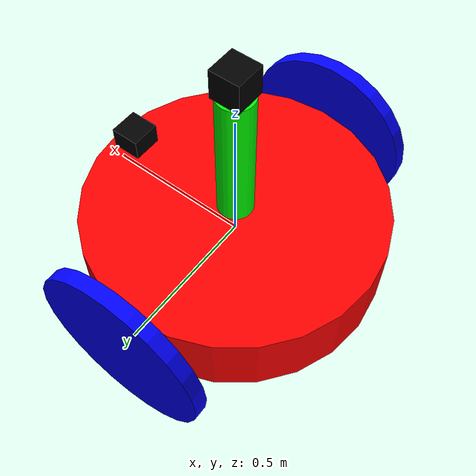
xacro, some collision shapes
<?xml version="1.0"?>
<robot name="diffrobot" xmlns:xacro="http://www.ros.org/wiki/xacro">

<xacro:include filename="$(find uvc_robot)/urdf/diffrobot.gazebo"/>

    <link name="robot_footprint"/>

    <joint name="robot_footprint_joint" type="fixed">
        <parent link ="robot_footprint"/>
        <child link ="base_link"/>
    </joint>

    <link name="base_link">
        <inertial>
            <origin xyz="0.0 0.0 0.0" rpy="0.0 0.0 0.0"/>
            <mass value="10.0"/>
            <inertia ixx="0.10" ixy="0.0" ixz="0.0" iyy="0.10" iyz="0.0" izz="0.10"/>
        </inertial>
        <visual >
            <origin xyz="0.0 0.0 0.0" rpy="0.0 0.0 0.0"/>
            <geometry>
            <cylinder radius="0.5" length="0.25"/>
            </geometry>
            <material name="">
                <color rgba="1.0 0.0 0.0 1.0"/>
                <texture filename=""/>
            </material>
        </visual>
        <collision>
            <origin xyz="0.0 0.0 0.0" rpy="0.0 0.0 0.0"/>
            <geometry>
            <cylinder radius="0.5" length="0.25"/>
            </geometry>
        </collision>
    </link>

    <link name="cylinder_link">
        <inertial>
            <origin xyz="0.0 0.0 0.0" rpy="0.0 0.0 0.0"/>
            <mass value="1.0"/>
            <inertia ixx="0.10" ixy="0.0" ixz="0.0" iyy="0.10" iyz="0.0" izz="0.10"/>
        </inertial>
        <visual >
            <origin xyz="0.0 0.0 0.0" rpy="0.0 0.0 0.0"/>
            <geometry>
                <cylinder radius="0.06" length="0.5"/>
            </geometry>
            <material name="">
                <color rgba="0.0 1.0 0.0 1.0"/>
                <texture filename=""/>
            </material>
        </visual>
        <collision>
            <origin xyz="0.0 0.0 0.0" rpy="0.0 0.0 0.0"/>
            <geometry>
            <cylinder radius="0.06" length="0.5"/>
            </geometry>
        </collision>
    </link>
    <joint name="cylinder_joint" type="fixed">
        <origin xyz="0.0 0.0 0.36" rpy="0.0 0.0 0.0"/>
        <parent link="base_link"/>
        <child link="cylinder_link"/>
        <axis xyz="0.0 0.0 0.0"/>
    </joint>

    <link name="left_wheel">
        <inertial>
            <origin xyz="0.0 0.0 0.0" rpy="0.0 0.0 0.0"/>
            <mass value="2"/>
            <inertia ixx="1.0" ixy="0.0" ixz="0.0" iyy="1.0" iyz="0.0" izz="1.0"/>
        </inertial>
        <visual >
            <origin xyz="0.0 0.0 0.0" rpy="0.0 0.0 0.0"/>
            <geometry>
                <cylinder radius="0.3" length="0.05"/>
            </geometry>
            <material name="">
                <color rgba="0.0 0.0 1.0 1.0"/>
                <texture filename=""/>
            </material>
        </visual>
        <collision>
            <origin xyz="0.0 0.0 0.0" rpy="0.0 0.0 0.0"/>
            <geometry>
                <cylinder radius="0.3" length="0.05"/>
            </geometry>
        </collision>
    </link>
    <joint name="left_wheel_joint" type="continuous">
        <origin xyz="0.0 0.55 0.0" rpy="0.0 1.5707 1.5707"/>
        <parent link="base_link"/>
        <child link="left_wheel"/>
        <axis xyz="0.0 0.0 1.0"/>
        <limit lower="0.0" upper="0.0" effort="0.0" velocity="0.0"/>
    </joint>

    <link name="right_wheel">
        <inertial>
            <origin xyz="0.0 0.0 0.0" rpy="0.0 0.0 0.0"/>
            <mass value="2.0"/>
            <inertia ixx="1.0" ixy="0.0" ixz="0.0" iyy="1.0" iyz="0.0" izz="1.0"/>
        </inertial>
        <visual>
            <origin xyz="0.0 0.0 0.0" rpy="0.0 0.0 0.0"/>
            <geometry>
            <cylinder radius="0.3" length="0.05"/>
            </geometry>
            <material name="">
                <color rgba="0.0 0.0 1.0 1.0"/>
                <texture filename=""/>
            </material>
        </visual>
        <collision>
            <origin xyz="0.0 0.0 0.0" rpy="0.0 0.0 0.0"/>
            <geometry>
            <cylinder radius="0.3" length="0.05"/>
            </geometry>
        </collision>
    </link>
    <joint name="right_wheel_joint" type="continuous">
        <origin xyz="0.0 -0.55 0.0" rpy="0.0 1.5707 1.5707"/>
        <parent link="base_link"/>
        <child link="right_wheel"/>
        <axis xyz="0.0 0.0 1.0"/>
        <limit lower="0.0" upper="0.0" effort="0.0" velocity="0.0"/>
    </joint>

    <link name="front_caster">
        <inertial>
            <origin xyz="0.0 0.0 0.0" rpy="0.0 0.0 0.0"/>
            <mass value="1"/>
            <inertia ixx="0.10" ixy="0.0" ixz="0.0" iyy="0.10" iyz="0.0" izz="0.10"/>
        </inertial>
        <visual>
            <origin xyz="0.0 0.0 0.0" rpy="0.0 0.0 0.0"/>
            <geometry>
                <sphere radius="0.1"/>
            </geometry>
            <material name="">
                <color rgba="1.0 1.0 0.0 1.0"/>
            </material>
        </visual>
        <collision>
            <origin xyz="0.0 0.0 0.0" rpy="0.0 0.0 0.0"/>
            <geometry>
                <sphere radius="0.1"/>
            </geometry>
        </collision>
    </link>
    <joint name="front_caster_joint" type="fixed">
        <origin xyz="0.35 0.0 -0.2" rpy="0.0 1.5707 1.5707"/>
        <parent link="base_link"/>
        <child link="front_caster"/>
        <axis xyz="0.0 0.0 0.0"/>
    </joint>

    <link name="back_caster">
        <inertial>
            <origin xyz="0.0 0.0 0.0" rpy="0.0 0.0 0.0"/>
            <mass value="1"/>
            <inertia ixx="0.10" ixy="0.0" ixz="0.0" iyy="0.10" iyz="0.0" izz="0.10"/>
        </inertial>
        <visual>
            <origin xyz="0.0 0.0 0.0" rpy="0.0 0.0 0.0"/>
            <geometry>
                <sphere radius="0.1"/>
            </geometry>
            <material name="">
                <color rgba="1.0 1.0 0.0 1.0"/>
            </material>
        </visual>
        <collision>
            <origin xyz="0.0 0.0 0.0" rpy="0.0 0.0 0.0"/>
            <geometry>
                <sphere radius="0.1"/>
            </geometry>
        </collision>
    </link>
    <joint name="back_caster_joint" type="fixed">
        <origin xyz="-0.35 0.0 -0.2" rpy="0.0 1.5707 1.5707"/>
        <parent link="base_link"/>
        <child link="back_caster"/>
        <axis xyz="0.0 0.0 0.0"/>
    </joint>

    <link name="lidar_link">
        <inertial>
            <origin xyz="0.0 0.0 0.0" rpy="0.0 0.0 0.0"/>
            <mass value="0.1"/>
            <inertia ixx="1.0" ixy="0.0" ixz="0.0" iyy="1.0" iyz="0.0" izz="1.0"/>
        </inertial>
        <visual>
            <origin xyz="0.0 0.0 0.0" rpy="1.5707 0.0 0.0"/>
            <geometry>
        <mesh filename="package://uvc_robot/meshes/lidar_link.STL"/>
            </geometry>
            <material name="">
                <color rgba="0.0 0.0 0.0 1.0"/>
                <texture filename=""/>
            </material>
        </visual>
        <collision>
            <origin xyz="0.0 0.0 0.0" rpy="0.0 0.0 0.0"/>
            <geometry>
                <box size="0.1 0.1 0.1"/>
            </geometry>
        </collision>
    </link>
    <joint name="lidar_joint" type="fixed">
        <origin xyz="0.42 0.0 0.15" rpy="0.0 0.0 0.0"/>
        <parent link="base_link"/>
        <child link="lidar_link"/>
        <axis xyz="0.0 1.0 0.0"/>
    </joint>

    <!-- Camera -->
    <link name="camera_link">
        <inertial>
            <origin xyz="0.0 0.0 0.0" rpy="0.0 0.0 0.0"/>
            <mass value="0.1"/>
            <inertia ixx="0.0" ixy="0.0" ixz="0.0" iyy="0.0" iyz="0.0" izz="0.0"/>
        </inertial>
        <visual>
            <origin xyz="0.0 0.0 0.0" rpy="0.0 0.0 0.0"/>
            <geometry>
        <mesh filename="package://uvc_robot/meshes/kinect.dae"/>
            </geometry>
            <material name="">
                <color rgba="0.0 0.0 0.0 1.0"/>
                <texture filename=""/>
            </material>
        </visual>
        <collision>
            <origin xyz="0.0 0.0 0.0" rpy="0.0 0.0 0.0"/>
            <geometry>
                <box size="0.1 0.1 0.1"/>
            </geometry>
        </collision>
    </link>
    <joint name="camera_joint" type="fixed">
        <origin xyz="0 0.0 0.3" rpy="0 0 0"/>
        <parent link="cylinder_link"/>
        <child link="camera_link"/>
        <axis xyz="0.0 0.0 0.0"/>
    </joint>

</robot>
